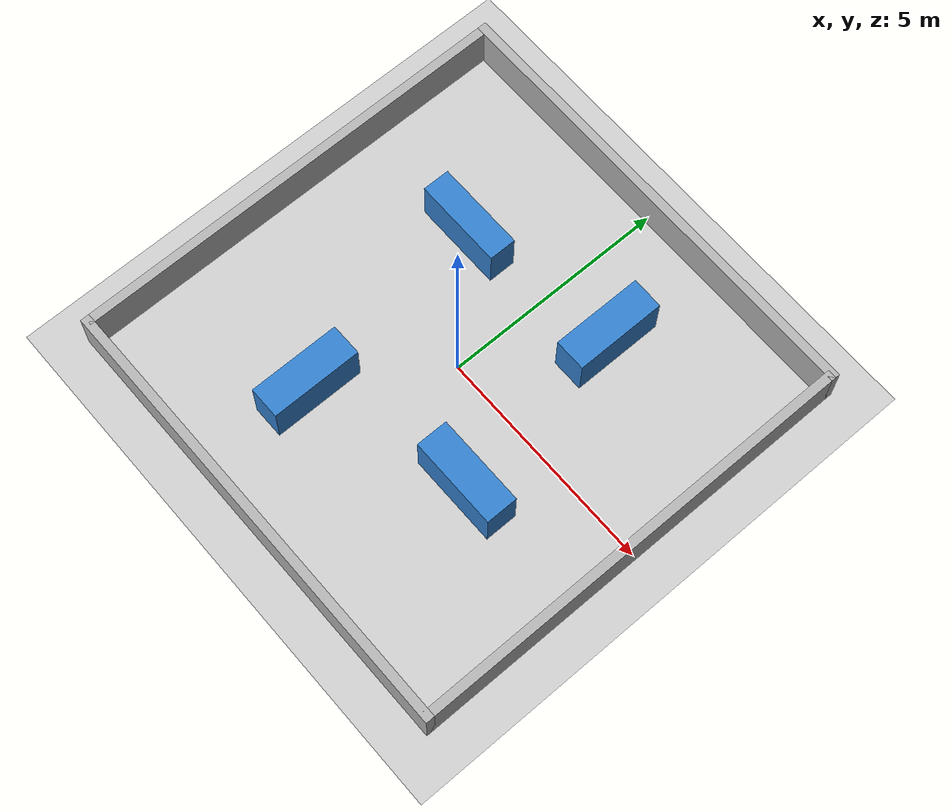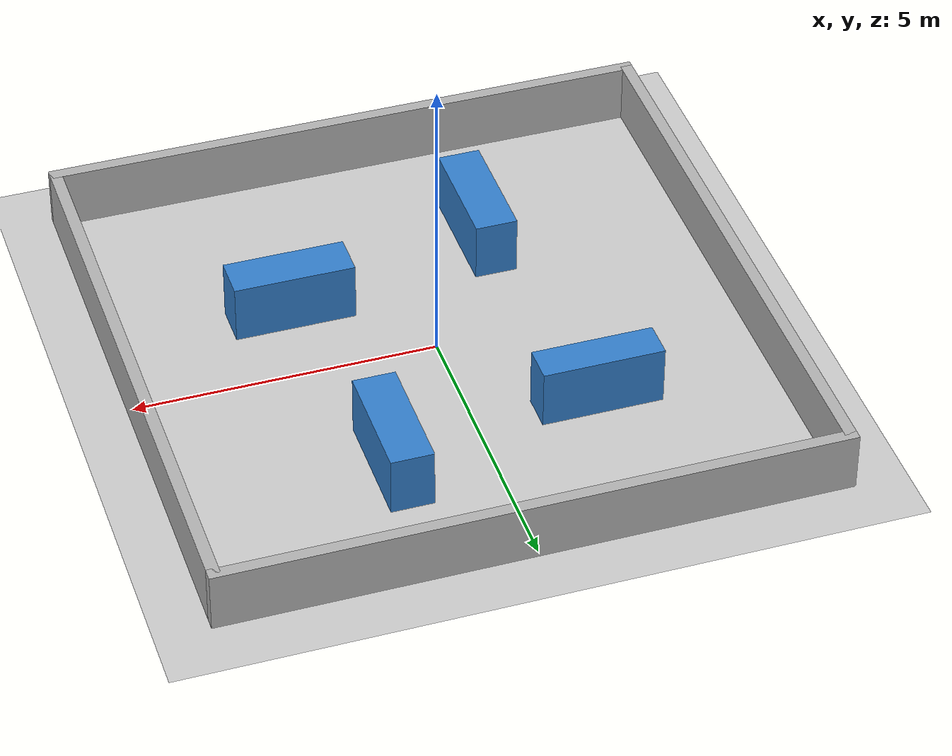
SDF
<?xml version="1.0" ?>
<sdf version="1.6">
  <world name="patrol_world">
    <!-- Sun -->
    <include>
      <uri>model://sun</uri>
    </include>

    <!-- Ground Plane -->
    <include>
      <uri>model://ground_plane</uri>
    </include>

    <!-- Outer Perimeter Walls (10m x 10m enclosure) -->
    <model name="wall_north">
      <static>true</static>
      <pose>0 5 0.5 0 0 0</pose>
      <link name="link">
        <collision name="collision">
          <geometry><box><size>10.2 0.2 1.0</size></box></geometry>
        </collision>
        <visual name="visual">
          <geometry><box><size>10.2 0.2 1.0</size></box></geometry>
          <material><ambient>0.7 0.7 0.7 1</ambient></material>
        </visual>
      </link>
    </model>

    <model name="wall_south">
      <static>true</static>
      <pose>0 -5 0.5 0 0 0</pose>
      <link name="link">
        <collision name="collision">
          <geometry><box><size>10.2 0.2 1.0</size></box></geometry>
        </collision>
        <visual name="visual">
          <geometry><box><size>10.2 0.2 1.0</size></box></geometry>
          <material><ambient>0.7 0.7 0.7 1</ambient></material>
        </visual>
      </link>
    </model>

    <model name="wall_east">
      <static>true</static>
      <pose>5 0 0.5 0 0 0</pose>
      <link name="link">
        <collision name="collision">
          <geometry><box><size>0.2 10.0 1.0</size></box></geometry>
        </collision>
        <visual name="visual">
          <geometry><box><size>0.2 10.0 1.0</size></box></geometry>
          <material><ambient>0.7 0.7 0.7 1</ambient></material>
        </visual>
      </link>
    </model>

    <model name="wall_west">
      <static>true</static>
      <pose>-5 0 0.5 0 0 0</pose>
      <link name="link">
        <collision name="collision">
          <geometry><box><size>0.2 10.0 1.0</size></box></geometry>
        </collision>
        <visual name="visual">
          <geometry><box><size>0.2 10.0 1.0</size></box></geometry>
          <material><ambient>0.7 0.7 0.7 1</ambient></material>
        </visual>
      </link>
    </model>

    <!-- Interior Obstacles -->
    <model name="obstacle_1">
      <static>true</static>
      <pose>-2 2 0.5 0 0 0</pose>
      <link name="link">
        <collision name="collision">
          <geometry><box><size>2.0 0.6 1.0</size></box></geometry>
        </collision>
        <visual name="visual">
          <geometry><box><size>2.0 0.6 1.0</size></box></geometry>
          <material><ambient>0.2 0.5 0.8 1</ambient></material>
        </visual>
      </link>
    </model>

    <model name="obstacle_2">
      <static>true</static>
      <pose>1.5 2.5 0.5 0 0 0</pose>
      <link name="link">
        <collision name="collision">
          <geometry><box><size>0.7 2.0 1.0</size></box></geometry>
        </collision>
        <visual name="visual">
          <geometry><box><size>0.7 2.0 1.0</size></box></geometry>
          <material><ambient>0.2 0.5 0.8 1</ambient></material>
        </visual>
      </link>
    </model>

    <model name="obstacle_3">
      <static>true</static>
      <pose>2.0 -1.5 0.5 0 0 0</pose>
      <link name="link">
        <collision name="collision">
          <geometry><box><size>2.0 0.7 1.0</size></box></geometry>
        </collision>
        <visual name="visual">
          <geometry><box><size>2.0 0.7 1.0</size></box></geometry>
          <material><ambient>0.2 0.5 0.8 1</ambient></material>
        </visual>
      </link>
    </model>

    <model name="obstacle_4">
      <static>true</static>
      <pose>-1.5 -2.5 0.5 0 0 0</pose>
      <link name="link">
        <collision name="collision">
          <geometry><box><size>0.7 2.0 1.0</size></box></geometry>
        </collision>
        <visual name="visual">
          <geometry><box><size>0.7 2.0 1.0</size></box></geometry>
          <material><ambient>0.2 0.5 0.8 1</ambient></material>
        </visual>
      </link>
    </model>

    <scene>
      <shadows>false</shadows>
    </scene>

    <gui fullscreen='0'>
      <camera name='user_camera'>
        <pose>0.0 -11.0 14.0 0 0.95 1.57</pose>
        <view_controller>orbit</view_controller>
      </camera>
    </gui>
  </world>
</sdf>
